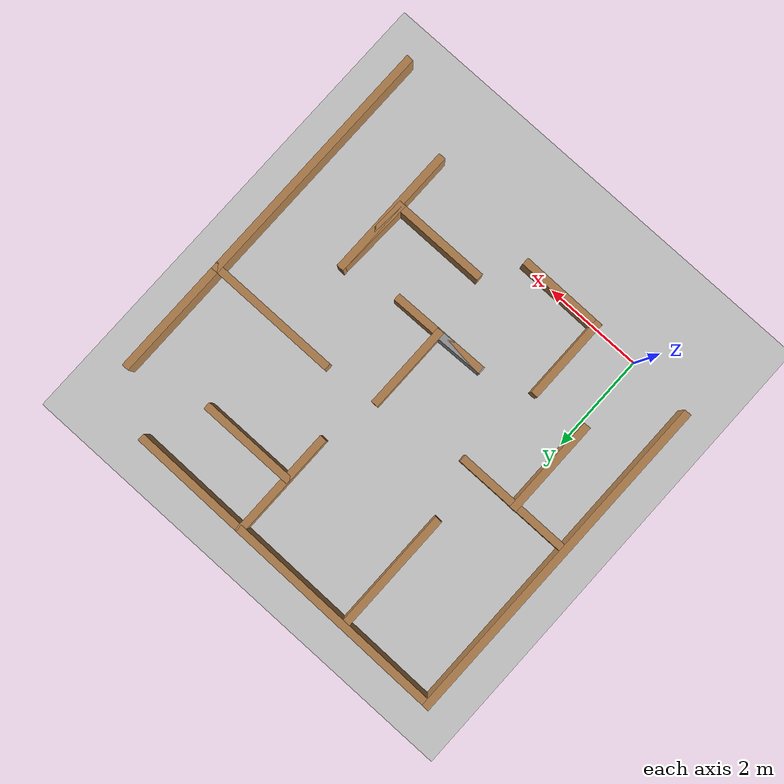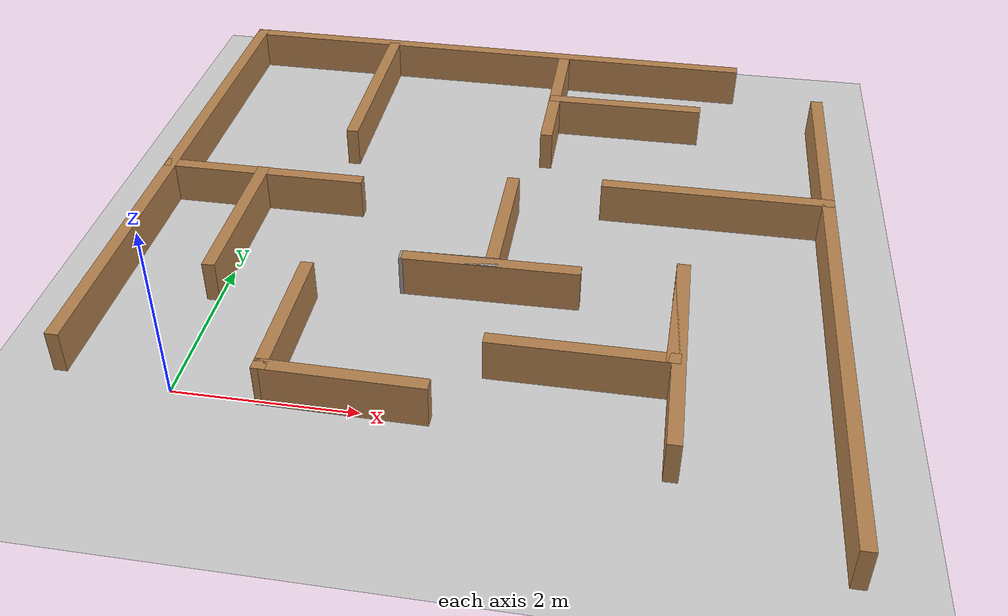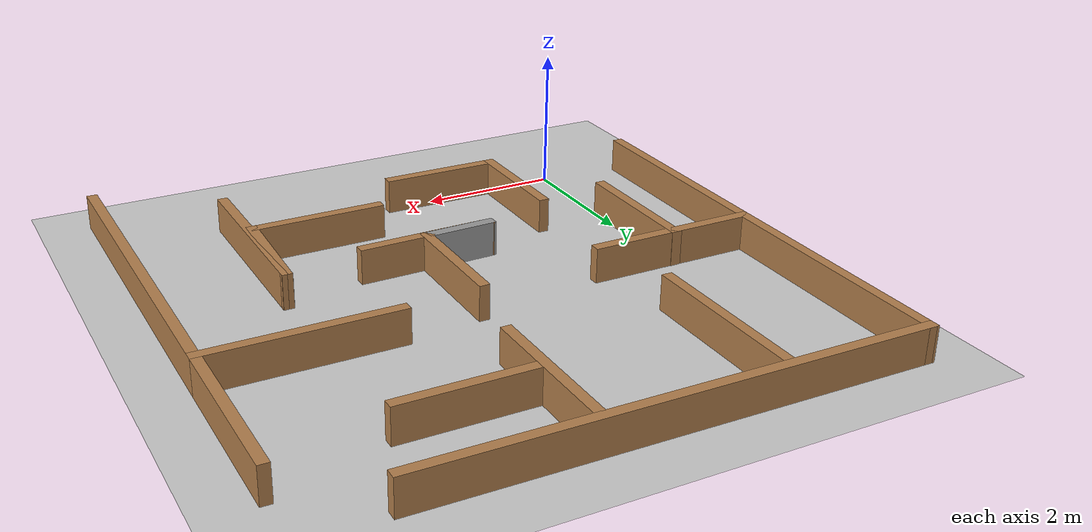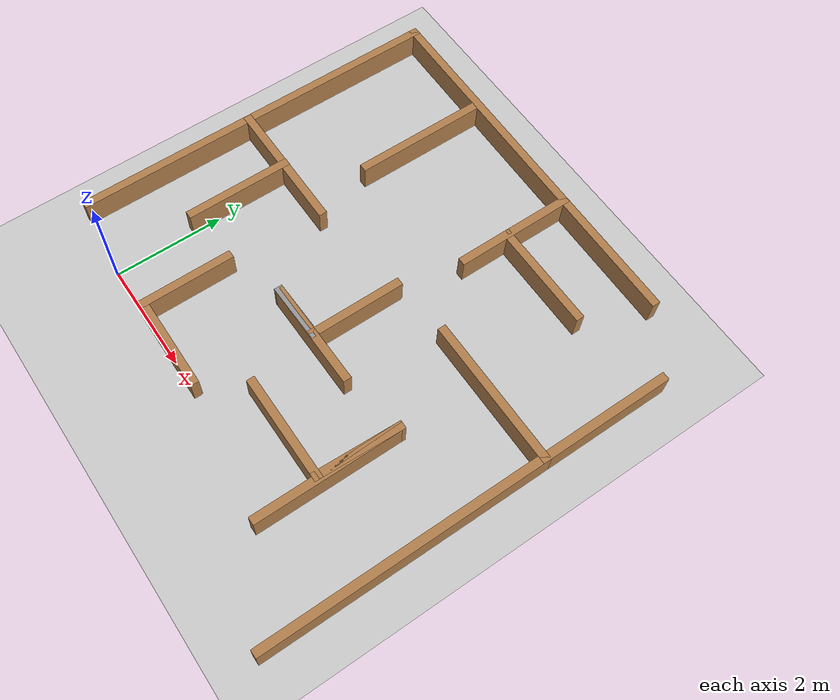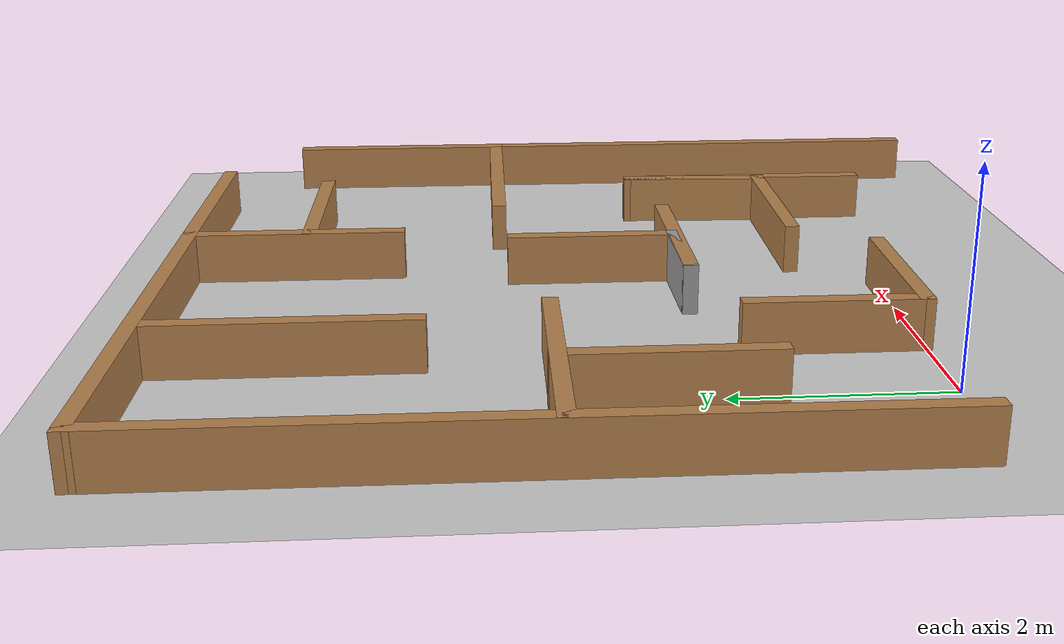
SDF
<sdf version="1.7">
 <world name="default">
  <light name="sun" type="directional">
   <pose>0 0 10 0 -0 0</pose>
   <diffuse>0.8 0.8 0.8 1</diffuse>
   <specular>0.2 0.2 0.2 1</specular>
   <attenuation>
    <range>1000</range>
    <constant>0.9</constant>
    <linear>0.01</linear>
    <quadratic>0.001</quadratic>
   </attenuation>
   <direction>-0.5 0.1 -0.9</direction>
   <spot><inner_angle>0</inner_angle><outer_angle>0</outer_angle><falloff>0</falloff></spot>
  </light>
  <model name="ground_plane">
   <static>1</static>
   <link name="link">
    <collision name="collision">
     <geometry><plane><normal>0 0 1</normal><size>100 100</size></plane></geometry>
     <surface>
      <contact><collide_bitmask>65535</collide_bitmask></contact>
      <friction><ode><mu>100</mu><mu2>50</mu2></ode></friction>
     </surface>
    </collision>
    <visual name="visual">
     <cast_shadows>0</cast_shadows>
     <geometry><plane><normal>0 0 1</normal><size>100 100</size></plane></geometry>
     <material>
      <script><uri>file://media/materials/scripts/gazebo.material</uri><name>Gazebo/Grey</name></script>
     </material>
    </visual>
   </link>
  </model>
  <gravity>0 0 -9.8</gravity>
  <magnetic_field>6e-06 2.3e-05 -4.2e-05</magnetic_field>
  <atmosphere type="adiabatic"/>
  <physics type="ode">
   <max_step_size>0.001</max_step_size>
   <real_time_factor>1</real_time_factor>
   <real_time_update_rate>1000</real_time_update_rate>
  </physics>
  <scene><ambient>0.4 0.4 0.4 1</ambient><background>0.7 0.7 0.7 1</background><shadows>1</shadows></scene>
  <audio><device>default</device></audio>
  <spherical_coordinates>
   <surface_model>EARTH_WGS84</surface_model>
   <latitude_deg>0</latitude_deg>
   <longitude_deg>0</longitude_deg>
   <elevation>0</elevation>
   <heading_deg>0</heading_deg>
  </spherical_coordinates>
  <model name="World1">
   <pose>2.74915 2.86345 0 0 -0 0</pose>
   <link name="Wall_10">
    <collision name="Wall_10_Collision">
     <geometry><box><size>2.5 0.15 0.5</size></box></geometry>
     <pose>0 0 0.25 0 -0 0</pose>
    </collision>
    <visual name="Wall_10_Visual">
     <pose>0 0 0.25 0 -0 0</pose>
     <geometry><box><size>2.5 0.15 0.5</size></box></geometry>
     <material>
      <script><uri>file://media/materials/scripts/gazebo.material</uri><name>Gazebo/Wood</name></script>
      <ambient>1 1 1 1</ambient>
     </material>
     <meta><layer>0</layer></meta>
    </visual>
    <pose>-1.9634 2.87515 0 0 -0 -1.5708</pose>
   </link>
   <link name="Wall_12">
    <collision name="Wall_12_Collision">
     <geometry><box><size>2.25 0.15 0.5</size></box></geometry>
     <pose>0 0 0.25 0 -0 0</pose>
    </collision>
    <visual name="Wall_12_Visual">
     <pose>0 0 0.25 0 -0 0</pose>
     <geometry><box><size>2.25 0.15 0.5</size></box></geometry>
     <material>
      <script><uri>file://media/materials/scripts/gazebo.material</uri><name>Gazebo/Wood</name></script>
      <ambient>1 1 1 1</ambient>
     </material>
     <meta><layer>0</layer></meta>
    </visual>
    <pose>0.521599 3.05515 0 0 -0 -1.5708</pose>
   </link>
   <link name="Wall_14">
    <collision name="Wall_14_Collision">
     <geometry><box><size>2 0.15 0.5</size></box></geometry>
     <pose>0 0 0.25 0 -0 0</pose>
    </collision>
    <visual name="Wall_14_Visual">
     <pose>0 0 0.25 0 -0 0</pose>
     <geometry><box><size>2 0.15 0.5</size></box></geometry>
     <material>
      <script><uri>file://media/materials/scripts/gazebo.material</uri><name>Gazebo/Wood</name></script>
      <ambient>1 1 1 1</ambient>
     </material>
     <meta><layer>0</layer></meta>
    </visual>
    <pose>1.4586 2.89515 0 0 -0 0</pose>
   </link>
   <link name="Wall_16">
    <collision name="Wall_16_Collision">
     <geometry><box><size>2.5 0.15 0.5</size></box></geometry>
     <pose>0 0 0.25 0 -0 0</pose>
    </collision>
    <visual name="Wall_16_Visual">
     <pose>0 0 0.25 0 -0 0</pose>
     <geometry><box><size>2.5 0.15 0.5</size></box></geometry>
     <material>
      <script><uri>file://media/materials/scripts/gazebo.material</uri><name>Gazebo/Wood</name></script>
      <ambient>1 1 1 1</ambient>
     </material>
     <meta><layer>0</layer></meta>
    </visual>
    <pose>-2.8044 0.538152 0 0 -0 0</pose>
   </link>
   <link name="Wall_18">
    <collision name="Wall_18_Collision">
     <geometry><box><size>2 0.15 0.5</size></box></geometry>
     <pose>0 0 0.25 0 -0 0</pose>
    </collision>
    <visual name="Wall_18_Visual">
     <pose>0 0 0.25 0 -0 0</pose>
     <geometry><box><size>2 0.15 0.5</size></box></geometry>
     <material>
      <script><uri>file://media/materials/scripts/gazebo.material</uri><name>Gazebo/Wood</name></script>
      <ambient>1 1 1 1</ambient>
     </material>
     <meta><layer>0</layer></meta>
    </visual>
    <pose>-2.8184 -0.380848 0 0 -0 -1.5708</pose>
   </link>
   <link name="Wall_21">
    <collision name="Wall_21_Collision">
     <geometry><box><size>1.77702 0.15 0.5</size></box></geometry>
     <pose>0 0 0.25 0 -0 0</pose>
    </collision>
    <visual name="Wall_21_Visual">
     <pose>0 0 0.25 0 -0 0</pose>
     <geometry><box><size>1.77702 0.15 0.5</size></box></geometry>
     <material>
      <script><uri>file://media/materials/scripts/gazebo.material</uri><name>Gazebo/Wood</name></script>
      <ambient>1 1 1 1</ambient>
     </material>
     <meta><layer>0</layer></meta>
    </visual>
    <pose>0.252599 -0.010348 0 0 -0 -1.5708</pose>
   </link>
   <link name="Wall_22">
    <collision name="Wall_22_Collision">
     <geometry><box><size>1.10675 0.15 0.5</size></box></geometry>
     <pose>0 0 0.25 0 -0 0</pose>
    </collision>
    <visual name="Wall_22_Visual">
     <pose>0 0 0.25 0 -0 0</pose>
     <geometry><box><size>1.10675 0.15 0.5</size></box></geometry>
     <material>
      <script><uri>file://media/materials/scripts/gazebo.material</uri><name>Gazebo/Grey</name></script>
      <ambient>1 1 1 1</ambient>
     </material>
     <meta><layer>0</layer></meta>
    </visual>
    <pose>-0.225601 -0.836847 0 0 -0 -3.11442</pose>
   </link>
   <link name="Wall_23">
    <collision name="Wall_23_Collision">
     <geometry><box><size>2.00039 0.15 0.5</size></box></geometry>
     <pose>0 0 0.25 0 -0 0</pose>
    </collision>
    <visual name="Wall_23_Visual">
     <pose>0 0 0.25 0 -0 0</pose>
     <geometry><box><size>2.00039 0.15 0.5</size></box></geometry>
     <material>
      <script><uri>file://media/materials/scripts/gazebo.material</uri><name>Gazebo/Wood</name></script>
      <ambient>1 1 1 1</ambient>
     </material>
     <meta><layer>0</layer></meta>
    </visual>
    <pose>0.247899 -0.836547 0 0 -0 0.014375</pose>
   </link>
   <link name="Wall_25">
    <collision name="Wall_25_Collision">
     <geometry><box><size>1.75 0.15 0.5</size></box></geometry>
     <pose>0 0 0.25 0 -0 0</pose>
    </collision>
    <visual name="Wall_25_Visual">
     <pose>0 0 0.25 0 -0 0</pose>
     <geometry><box><size>1.75 0.15 0.5</size></box></geometry>
     <material>
      <script><uri>file://media/materials/scripts/gazebo.material</uri><name>Gazebo/Wood</name></script>
      <ambient>1 1 1 1</ambient>
     </material>
     <meta><layer>0</layer></meta>
    </visual>
    <pose>-1.7524 -2.03185 0 0 -0 -1.5708</pose>
   </link>
   <link name="Wall_26">
    <collision name="Wall_26_Collision">
     <geometry><box><size>1.79341 0.15 0.5</size></box></geometry>
     <pose>0 0 0.25 0 -0 0</pose>
    </collision>
    <visual name="Wall_26_Visual">
     <pose>0 0 0.25 0 -0 0</pose>
     <geometry><box><size>1.79341 0.15 0.5</size></box></geometry>
     <material>
      <script><uri>file://media/materials/scripts/gazebo.material</uri><name>Gazebo/Wood</name></script>
      <ambient>1 1 1 1</ambient>
     </material>
     <meta><layer>0</layer></meta>
    </visual>
    <pose>-0.930901 -2.83935 0 0 -0 -0.009129</pose>
   </link>
   <link name="Wall_29">
    <collision name="Wall_29_Collision">
     <geometry><box><size>2 0.15 0.5</size></box></geometry>
     <pose>0 0 0.25 0 -0 0</pose>
    </collision>
    <visual name="Wall_29_Visual">
     <pose>0 0 0.25 0 -0 0</pose>
     <geometry><box><size>2 0.15 0.5</size></box></geometry>
     <material>
      <script><uri>file://media/materials/scripts/gazebo.material</uri><name>Gazebo/Wood</name></script>
      <ambient>1 1 1 1</ambient>
     </material>
     <meta><layer>0</layer></meta>
    </visual>
    <pose>1.3736 -2.07985 0 0 -0 0</pose>
   </link>
   <link name="Wall_30">
    <collision name="Wall_30_Collision">
     <geometry><box><size>1.63493 0.15 0.5</size></box></geometry>
     <pose>0 0 0.25 0 -0 0</pose>
    </collision>
    <visual name="Wall_30_Visual">
     <pose>0 0 0.25 0 -0 0</pose>
     <geometry><box><size>1.63493 0.15 0.5</size></box></geometry>
     <material>
      <script><uri>file://media/materials/scripts/gazebo.material</uri><name>Gazebo/Wood</name></script>
      <ambient>1 1 1 1</ambient>
     </material>
     <meta><layer>0</layer></meta>
    </visual>
    <pose>2.3249 -1.33785 0 0 -0 1.53537</pose>
   </link>
   <link name="Wall_31">
    <collision name="Wall_31_Collision">
     <geometry><box><size>2.75 0.15 0.5</size></box></geometry>
     <pose>0 0 0.25 0 -0 0</pose>
    </collision>
    <visual name="Wall_31_Visual">
     <pose>0 0 0.25 0 -0 0</pose>
     <geometry><box><size>2.75 0.15 0.5</size></box></geometry>
     <material>
      <script><uri>file://media/materials/scripts/gazebo.material</uri><name>Gazebo/Wood</name></script>
      <ambient>1 1 1 1</ambient>
     </material>
     <meta><layer>0</layer></meta>
    </visual>
    <pose>2.3512 -1.89585 0 0 -0 -1.5708</pose>
   </link>
   <link name="Wall_33">
    <collision name="Wall_33_Collision">
     <geometry><box><size>2.75 0.15 0.5</size></box></geometry>
     <pose>0 0 0.25 0 -0 0</pose>
    </collision>
    <visual name="Wall_33_Visual">
     <pose>0 0 0.25 0 -0 0</pose>
     <geometry><box><size>2.75 0.15 0.5</size></box></geometry>
     <material>
      <script><uri>file://media/materials/scripts/gazebo.material</uri><name>Gazebo/Wood</name></script>
      <ambient>1 1 1 1</ambient>
     </material>
     <meta><layer>0</layer></meta>
    </visual>
    <pose>2.6966 0.946152 0 0 -0 0</pose>
   </link>
   <link name="Wall_34">
    <collision name="Wall_34_Collision">
     <geometry><box><size>2.5 0.15 0.5</size></box></geometry>
     <pose>0 0 0.25 0 -0 0</pose>
    </collision>
    <visual name="Wall_34_Visual">
     <pose>0 0 0.25 0 -0 0</pose>
     <geometry><box><size>2.5 0.15 0.5</size></box></geometry>
     <material>
      <script><uri>file://media/materials/scripts/gazebo.material</uri><name>Gazebo/Wood</name></script>
      <ambient>1 1 1 1</ambient>
     </material>
     <meta><layer>0</layer></meta>
    </visual>
    <pose>3.9966 2.12115 0 0 -0 1.5708</pose>
   </link>
   <link name="Wall_36">
    <collision name="Wall_36_Collision">
     <geometry><box><size>5.25 0.15 0.5</size></box></geometry>
     <pose>0 0 0.25 0 -0 0</pose>
    </collision>
    <visual name="Wall_36_Visual">
     <pose>0 0 0.25 0 -0 0</pose>
     <geometry><box><size>5.25 0.15 0.5</size></box></geometry>
     <material>
      <script><uri>file://media/materials/scripts/gazebo.material</uri><name>Gazebo/Wood</name></script>
      <ambient>1 1 1 1</ambient>
     </material>
     <meta><layer>0</layer></meta>
    </visual>
    <pose>3.9966 -1.60385 0 0 -0 -1.5708</pose>
   </link>
   <link name="Wall_6">
    <collision name="Wall_6_Collision">
     <geometry><box><size>6.98253 0.15 0.5</size></box></geometry>
     <pose>0 0 0.25 0 -0 0</pose>
    </collision>
    <visual name="Wall_6_Visual">
     <pose>0 0 0.25 0 -0 0</pose>
     <geometry><box><size>6.98253 0.15 0.5</size></box></geometry>
     <material>
      <script><uri>file://media/materials/scripts/gazebo.material</uri><name>Gazebo/Wood</name></script>
      <ambient>1 1 1 1</ambient>
     </material>
     <meta><layer>0</layer></meta>
    </visual>
    <pose>-3.9874 0.737152 0 0 -0 1.56816</pose>
   </link>
   <link name="Wall_8">
    <collision name="Wall_8_Collision">
     <geometry><box><size>7 0.15 0.5</size></box></geometry>
     <pose>0 0 0.25 0 -0 0</pose>
    </collision>
    <visual name="Wall_8_Visual">
     <pose>0 0 0.25 0 -0 0</pose>
     <geometry><box><size>7 0.15 0.5</size></box></geometry>
     <material>
      <script><uri>file://media/materials/scripts/gazebo.material</uri><name>Gazebo/Wood</name></script>
      <ambient>1 1 1 1</ambient>
     </material>
     <meta><layer>0</layer></meta>
    </visual>
    <pose>-0.553401 4.12115 0 0 -0 -0.009343</pose>
   </link>
   <static>1</static>
  </model>
 </world>
</sdf>
